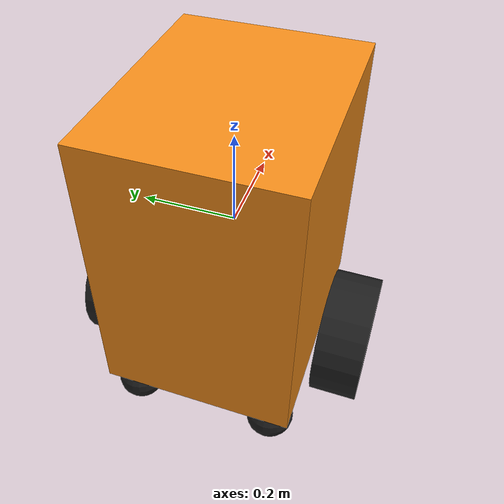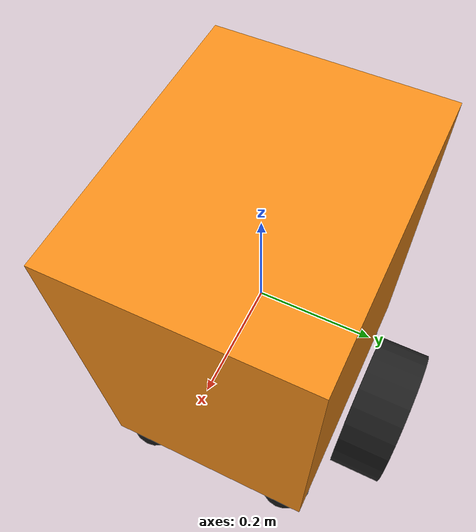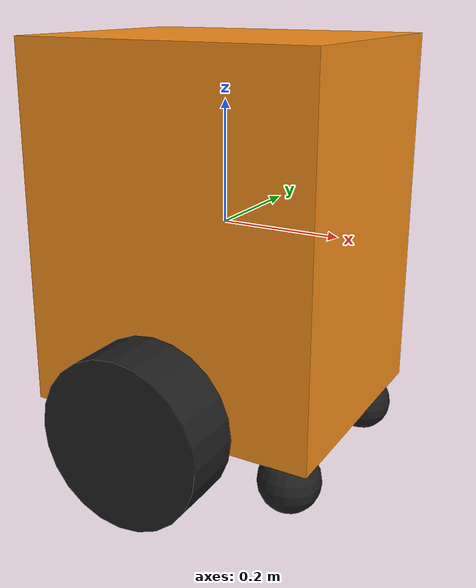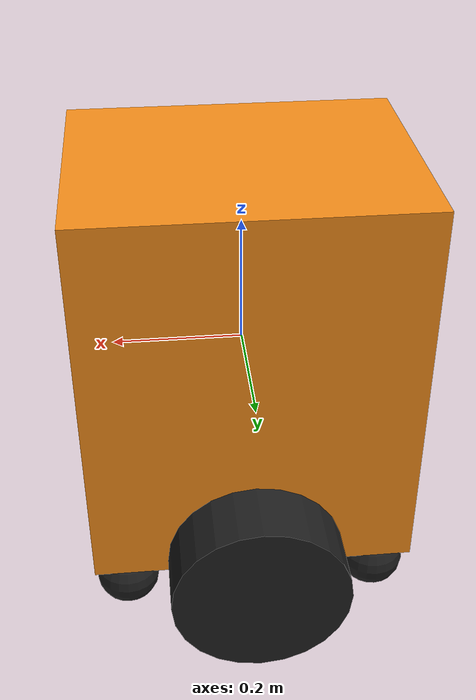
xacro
<?xml version="1.0"?>
<robot name="diffbot" xmlns:xacro="http://www.ros.org/wiki/xacro">

  <!-- launch から渡される -->
  <xacro:arg name="use_mock_hardware" default="false" />

  <!-- Material definitions -->
  <xacro:include
    filename="$(find ros2_control_demo_description)/diffbot/urdf/diffbot.materials.xacro" />

  <!-- ros2_control definition -->
  <xacro:include
    filename="$(find ros2_control_diff_drive)/ros2_control/diffbot.ros2_control.xacro" />

  <xacro:macro name="diffbot" params="prefix">

    <!-- =========================
         Real robot parameters
         ========================= -->

    <xacro:property name="PI" value="3.1415926535897931" />

    <!-- Robot body -->
    <xacro:property name="base_length" value="0.50" />
    <xacro:property name="base_width"  value="0.40" />
    <xacro:property name="base_height" value="0.60" />

    <!--
      車体下端の地上高。
      今回は 10 cm とする。
      base_link は車体の幾何学中心なので、
      base_link の地上高 = 0.10 + 0.60 / 2 = 0.40 m
    -->
    <xacro:property name="base_bottom_clearance" value="0.10" />

    <!-- Placeholder body mass -->
    <xacro:property name="base_mass" value="0.3" />

    <!-- Main wheels -->
    <xacro:property name="wheel_mass" value="0.3" />
    <xacro:property name="wheel_len" value="0.10" />
    <xacro:property name="wheel_radius" value="0.135" />
    <xacro:property name="wheel_separation" value="0.53" />

    <!-- Auxiliary wheels / ball casters -->
    <!--
      現段階では直径10 cmの球として簡略化。
      実車体（X=0.50 m, Y=0.40 m）の四隅から X/Y 各方向へ 5 cm 内側に中心を配置する。
      通常時は主輪へ十分な荷重がかかるよう、補助球は地面から5 mm浮かせる。
      後で実機のキャスター構造が確定したら、
      swivel + wheel の2軸構造へ置き換え可能。
    -->
    <xacro:property name="caster_radius" value="0.05" />
    <xacro:property name="caster_mass" value="0.05" />
    <xacro:property name="caster_inset" value="0.05" />

    <!--
      補助球は通常走行時に主輪の荷重を奪わないよう、
      地面から 5 mm 浮かせる。
    -->
    <xacro:property name="caster_ground_clearance" value="0.005" />

    <!-- VLP-16 -->
    <xacro:property name="vlp_bottom_height_from_ground" value="0.43" />
    <xacro:property name="vlp_height" value="0.07" />

    <!-- =========================
         Derived geometry
         ========================= -->

    <!-- base_link の地上高 -->
    <xacro:property
      name="base_link_height_from_ground"
      value="${base_bottom_clearance + base_height/2}" />

    <!-- 主輪中心位置 -->
    <xacro:property
      name="wheel_center_z"
      value="${wheel_radius - base_link_height_from_ground}" />

    <xacro:property
      name="wheel_y"
      value="${wheel_separation/2}" />

    <!-- 補助輪中心位置 -->
    <xacro:property
      name="caster_center_z"
      value="${caster_radius + caster_ground_clearance - base_link_height_from_ground}" />

    <xacro:property
      name="caster_x"
      value="${base_length/2 - caster_inset}" />

    <xacro:property
      name="caster_y"
      value="${base_width/2 - caster_inset}" />

    <!-- VLP-16 center relative to base_link -->
    <xacro:property
      name="vlp_center_z"
      value="${vlp_bottom_height_from_ground + vlp_height/2 - base_link_height_from_ground}" />

    <!-- =========================
         Base link
         ========================= -->
    <link name="${prefix}base_link">
      <collision>
        <origin xyz="0 0 0" rpy="0 0 0" />
        <geometry>
          <box size="${base_length} ${base_width} ${base_height}" />
        </geometry>
      </collision>

      <visual>
        <origin xyz="0 0 0" rpy="0 0 0" />
        <geometry>
          <box size="${base_length} ${base_width} ${base_height}" />
        </geometry>
        <material name="orange" />
      </visual>

      <inertial>
        <origin xyz="0 0 0" rpy="0 0 0" />
        <mass value="${base_mass}" />
        <inertia
          ixx="${base_mass / 12.0 * (base_width*base_width + base_height*base_height)}"
          ixy="0.0"
          ixz="0.0"
          iyy="${base_mass / 12.0 * (base_length*base_length + base_height*base_height)}"
          iyz="0.0"
          izz="${base_mass / 12.0 * (base_length*base_length + base_width*base_width)}" />
      </inertial>
    </link>

    <!-- =========================
         Left wheel
         ========================= -->
    <joint name="${prefix}left_wheel_joint" type="continuous">
      <parent link="${prefix}base_link" />
      <child link="${prefix}left_wheel" />
      <origin xyz="0 ${wheel_y} ${wheel_center_z}" rpy="0 0 0" />
      <axis xyz="0 1 0" />
      <dynamics damping="0.2" />
      <limit effort="100" velocity="5.0" />
    </joint>

    <link name="${prefix}left_wheel">
      <collision>
        <origin xyz="0 0 0" rpy="${PI/2} 0 0" />
        <geometry>
          <cylinder length="${wheel_len}" radius="${wheel_radius}" />
        </geometry>
      </collision>

      <visual>
        <origin xyz="0 0 0" rpy="${PI/2} 0 0" />
        <geometry>
          <cylinder length="${wheel_len}" radius="${wheel_radius}" />
        </geometry>
        <material name="black" />
      </visual>

      <inertial>
        <origin xyz="0 0 0" rpy="${PI/2} 0 0" />
        <mass value="${wheel_mass}" />
        <inertia
          ixx="${wheel_mass / 12.0 * (3*wheel_radius*wheel_radius + wheel_len*wheel_len)}"
          ixy="0.0"
          ixz="0.0"
          iyy="${wheel_mass / 12.0 * (3*wheel_radius*wheel_radius + wheel_len*wheel_len)}"
          iyz="0.0"
          izz="${wheel_mass / 2.0 * wheel_radius*wheel_radius}" />
      </inertial>
    </link>

    <!-- =========================
         Right wheel
         ========================= -->
    <joint name="${prefix}right_wheel_joint" type="continuous">
      <parent link="${prefix}base_link" />
      <child link="${prefix}right_wheel" />
      <origin xyz="0 -${wheel_y} ${wheel_center_z}" rpy="0 0 0" />
      <axis xyz="0 1 0" />
      <dynamics damping="0.2" />
      <limit effort="100" velocity="5.0" />
    </joint>

    <link name="${prefix}right_wheel">
      <collision>
        <origin xyz="0 0 0" rpy="${PI/2} 0 0" />
        <geometry>
          <cylinder length="${wheel_len}" radius="${wheel_radius}" />
        </geometry>
      </collision>

      <visual>
        <origin xyz="0 0 0" rpy="${PI/2} 0 0" />
        <geometry>
          <cylinder length="${wheel_len}" radius="${wheel_radius}" />
        </geometry>
        <material name="black" />
      </visual>

      <inertial>
        <origin xyz="0 0 0" rpy="${PI/2} 0 0" />
        <mass value="${wheel_mass}" />
        <inertia
          ixx="${wheel_mass / 12.0 * (3*wheel_radius*wheel_radius + wheel_len*wheel_len)}"
          ixy="0.0"
          ixz="0.0"
          iyy="${wheel_mass / 12.0 * (3*wheel_radius*wheel_radius + wheel_len*wheel_len)}"
          iyz="0.0"
          izz="${wheel_mass / 2.0 * wheel_radius*wheel_radius}" />
      </inertial>
    </link>

    <!-- =========================
         Auxiliary wheels
         Simplified as ball casters
         ========================= -->

    <!-- Front Left -->
    <joint name="${prefix}front_left_caster_joint" type="fixed">
      <parent link="${prefix}base_link" />
      <child link="${prefix}front_left_caster" />
      <origin xyz="${caster_x} ${caster_y} ${caster_center_z}" rpy="0 0 0" />
    </joint>

    <link name="${prefix}front_left_caster">
      <collision>
        <geometry>
          <sphere radius="${caster_radius}" />
        </geometry>
      </collision>
      <visual>
        <geometry>
          <sphere radius="${caster_radius}" />
        </geometry>
        <material name="black" />
      </visual>
      <inertial>
        <mass value="${caster_mass}" />
        <inertia
          ixx="${2.0/5.0 * caster_mass * caster_radius * caster_radius}"
          ixy="0.0"
          ixz="0.0"
          iyy="${2.0/5.0 * caster_mass * caster_radius * caster_radius}"
          iyz="0.0"
          izz="${2.0/5.0 * caster_mass * caster_radius * caster_radius}" />
      </inertial>
    </link>

    <!-- Front Right -->
    <joint name="${prefix}front_right_caster_joint" type="fixed">
      <parent link="${prefix}base_link" />
      <child link="${prefix}front_right_caster" />
      <origin xyz="${caster_x} -${caster_y} ${caster_center_z}" rpy="0 0 0" />
    </joint>

    <link name="${prefix}front_right_caster">
      <collision>
        <geometry>
          <sphere radius="${caster_radius}" />
        </geometry>
      </collision>
      <visual>
        <geometry>
          <sphere radius="${caster_radius}" />
        </geometry>
        <material name="black" />
      </visual>
      <inertial>
        <mass value="${caster_mass}" />
        <inertia
          ixx="${2.0/5.0 * caster_mass * caster_radius * caster_radius}"
          ixy="0.0"
          ixz="0.0"
          iyy="${2.0/5.0 * caster_mass * caster_radius * caster_radius}"
          iyz="0.0"
          izz="${2.0/5.0 * caster_mass * caster_radius * caster_radius}" />
      </inertial>
    </link>

    <!-- Rear Left -->
    <joint name="${prefix}rear_left_caster_joint" type="fixed">
      <parent link="${prefix}base_link" />
      <child link="${prefix}rear_left_caster" />
      <origin xyz="-${caster_x} ${caster_y} ${caster_center_z}" rpy="0 0 0" />
    </joint>

    <link name="${prefix}rear_left_caster">
      <collision>
        <geometry>
          <sphere radius="${caster_radius}" />
        </geometry>
      </collision>
      <visual>
        <geometry>
          <sphere radius="${caster_radius}" />
        </geometry>
        <material name="black" />
      </visual>
      <inertial>
        <mass value="${caster_mass}" />
        <inertia
          ixx="${2.0/5.0 * caster_mass * caster_radius * caster_radius}"
          ixy="0.0"
          ixz="0.0"
          iyy="${2.0/5.0 * caster_mass * caster_radius * caster_radius}"
          iyz="0.0"
          izz="${2.0/5.0 * caster_mass * caster_radius * caster_radius}" />
      </inertial>
    </link>

    <!-- Rear Right -->
    <joint name="${prefix}rear_right_caster_joint" type="fixed">
      <parent link="${prefix}base_link" />
      <child link="${prefix}rear_right_caster" />
      <origin xyz="-${caster_x} -${caster_y} ${caster_center_z}" rpy="0 0 0" />
    </joint>

    <link name="${prefix}rear_right_caster">
      <collision>
        <geometry>
          <sphere radius="${caster_radius}" />
        </geometry>
      </collision>
      <visual>
        <geometry>
          <sphere radius="${caster_radius}" />
        </geometry>
        <material name="black" />
      </visual>
      <inertial>
        <mass value="${caster_mass}" />
        <inertia
          ixx="${2.0/5.0 * caster_mass * caster_radius * caster_radius}"
          ixy="0.0"
          ixz="0.0"
          iyy="${2.0/5.0 * caster_mass * caster_radius * caster_radius}"
          iyz="0.0"
          izz="${2.0/5.0 * caster_mass * caster_radius * caster_radius}" />
      </inertial>
    </link>

    <!-- =========================
         Velodyne VLP-16
         ========================= -->
    <joint name="${prefix}scan_joint" type="fixed">
      <parent link="${prefix}base_link" />
      <child link="${prefix}velodyne" />
      <origin xyz="0 0 ${vlp_center_z}" rpy="0 0 0" />
    </joint>

    <link name="${prefix}velodyne">
      <!--
        外部 mesh の package:// 解決問題を避けるため、
        現段階では簡易円筒モデルとしている。
      -->
      <visual>
        <origin xyz="0 0 0" rpy="0 0 0" />
        <geometry>
          <cylinder length="${vlp_height}" radius="0.052" />
        </geometry>
        <material name="black" />
      </visual>

      <collision>
        <origin xyz="0 0 0" rpy="0 0 0" />
        <geometry>
          <cylinder length="${vlp_height}" radius="0.052" />
        </geometry>
      </collision>

      <inertial>
        <mass value="0.114" />
        <origin xyz="0 0 0" />
        <inertia
          ixx="0.001"
          ixy="0.0"
          ixz="0.0"
          iyy="0.001"
          iyz="0.0"
          izz="0.001" />
      </inertial>
    </link>

    <!-- =========================
         IMU
         ========================= -->
    <joint name="${prefix}imu_joint" type="fixed">
      <parent link="${prefix}base_link"/>
      <child link="${prefix}imu_link"/>
      <origin xyz="0.093 0.020 -0.014" rpy="0 0 0"/>
    </joint>

    <link name="${prefix}imu_link"/>

    <!-- =========================
         Camera physical frame
         ========================= -->
    <joint name="${prefix}camera_joint" type="fixed">
      <parent link="${prefix}base_link"/>
      <child link="${prefix}camera_link"/>
      <origin xyz="0.270 0.000 0.338" rpy="0 0 0"/>
    </joint>

    <link name="${prefix}camera_link"/>

    <!-- Camera optical frame
         レンズ先端はカメラ基板より約2.5 cm前方。
         現段階では optical frame をレンズ先端付近に仮置きする。
         よって base_link からの x は約0.295 m。
         光学中心の厳密位置は後で実機に合わせて調整可能。
    -->
    <joint name="${prefix}camera_optical_joint" type="fixed">
      <parent link="${prefix}camera_link"/>
      <child link="${prefix}camera_optical_frame"/>
      <origin xyz="0.025 0 0" rpy="-${PI/2} 0 -${PI/2}"/>
    </joint>

    <link name="${prefix}camera_optical_frame"/>

  </xacro:macro>

  <!-- =========================
       Robot instance
       ========================= -->
  <xacro:diffbot prefix="" />

  <!-- =========================
       ros2_control
       ========================= -->
  <xacro:diffbot_ros2_control
    name="DiffBot"
    prefix=""
    use_mock_hardware="$(arg use_mock_hardware)" />

</robot>
